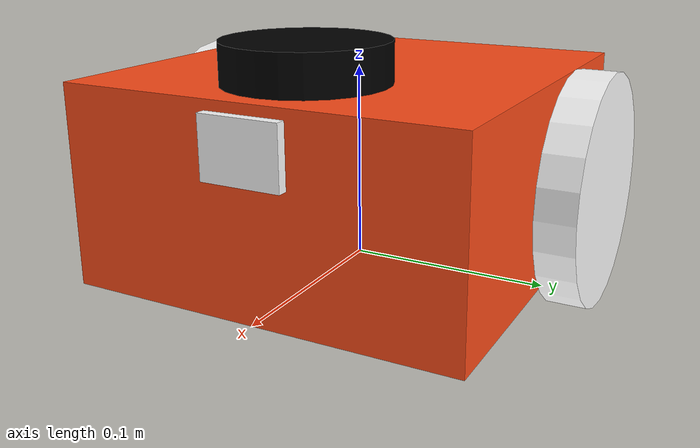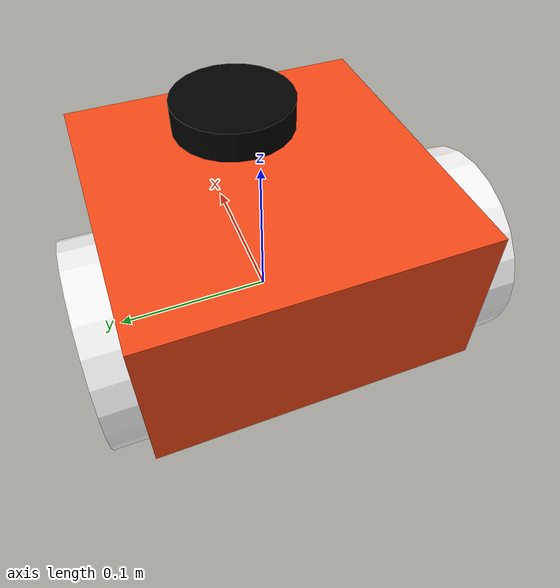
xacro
<?xml version="1.0"?>
<!-- Purpose: MobileBot base description and link/joint definitions. -->
<robot xmlns:xacro="http://www.ros.org/wiki/xacro">

    <xacro:include filename="mobilerobot_inertials.urdf.xacro"/>
    <xacro:include filename="mobilerobot_lidar_camera.urdf.xacro"/>

    <material name="white">
        <color rgba="1 1 1 1"/>
    </material>

    <material name="orange">
        <color rgba="1 0.3 0.1 1"/>
    </material>

    <material name="black">
        <color rgba="0 0 0 1"/>
    </material>

    <!-- BASE LINK -->
    <link name="base_link">
    </link>

    <joint name="base_footprint_joint" type="fixed">
        <parent link="base_link"/>
        <child link="base_footprint"/>
        <origin xyz="0 0 0" rpy="0 0 0"/>
    </joint>

    <link name="base_footprint">
    </link>

    <!-- CHASSIS LINK -->
    <joint name="chassis_joint" type="fixed">
        <parent link="base_link"/>
        <child link="chassis"/>
        <origin xyz="0 0 0"/>
    </joint>

    <gazebo reference="chassis">
        <material>Gazebo/Orange</material>
    </gazebo>

    <link name="chassis">
        <visual>
            <origin xyz="0 0 0.05"/>
            <geometry>
                <box size="0.2 0.2 0.1"/>
            </geometry>
            <material name="orange"/>
        </visual>
        <collision>
            <origin xyz="0 0 0.05"/>
            <geometry>
                <box size="0.2 0.2 0.1"/>
            </geometry>
        </collision>
        <xacro:inertial_box mass="3" x="0.2" y="0.2" z="0.1">
            <origin xyz="0 0 0.05" rpy="0 0 0"/>
        </xacro:inertial_box>
    </link>

    <!-- LEFT WHEEL LINK -->
    <joint name="left_wheel_joint" type="continuous">
        <parent link="chassis"/>
        <child link="left_wheel"/>
        <origin xyz="-0.04 0.11 0.04" rpy="-${pi/2} 0 0"/>
        <axis xyz="0 0 1"/>
    </joint>

    <link name="left_wheel">
        <visual>
            <geometry>
                <cylinder radius="0.06" length="0.02"/>
            </geometry>
            <material name="white"/>
        </visual>
        <collision>
            <geometry>
                <cylinder radius="0.06" length="0.02"/>
            </geometry>
        </collision>
        <xacro:inertial_cylinder mass="0.5" length="0.02" radius="0.06">
            <origin xyz="0 0 0" rpy="0 0 0"/>
        </xacro:inertial_cylinder>
    </link>

    <!-- RIGHT WHEEL LINK -->
    <joint name="right_wheel_joint" type="continuous">
        <parent link="chassis"/>
        <child link="right_wheel"/>
        <origin xyz="-0.04 -0.11 0.04" rpy="${pi/2} 0 0"/>
        <axis xyz="0 0 -1"/>
    </joint>

    <link name="right_wheel">
        <visual>
            <geometry>
                <cylinder radius="0.06" length="0.02"/>
            </geometry>
            <material name="white"/>
        </visual>
        <collision>
            <geometry>
                <cylinder radius="0.06" length="0.02"/>
            </geometry>
        </collision>
        <xacro:inertial_cylinder mass="0.5" length="0.02" radius="0.06">
            <origin xyz="0 0 0" rpy="0 0 0"/>
        </xacro:inertial_cylinder>
    </link>

    <!-- CASTER WHEEL LINK -->
    <joint name="caster_wheel_joint" type="fixed">
        <parent link="chassis"/>
        <child link="caster_wheel"/>
        <origin xyz="0.06 0 0"/>
    </joint>
    <gazebo reference="caster_wheel">
        <material>Gazebo/Black</material>
        <mu1 value="0.01"/>
        <mu2 value="0.01"/>
    </gazebo>

    <link name="caster_wheel">
        <visual>
            <geometry>
                <sphere radius="0.021"/>
            </geometry>
            <material name="black"/>
        </visual>
        <collision>
            <geometry>
                <sphere radius="0.021"/>
            </geometry>
        </collision>
        <xacro:inertial_sphere mass="0.5" radius="0.021">
            <origin xyz="0 0 0" rpy="0 0 0"/>
        </xacro:inertial_sphere>
    </link>
</robot>

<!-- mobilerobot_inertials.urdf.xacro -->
<!-- Purpose: Inertial parameters for MobileBot links. -->
<robot xmlns:xacro="http://www.ros.org/wiki/xacro" >

    <xacro:macro name="inertial_sphere" params="mass radius *origin">
        <inertial>
            <xacro:insert_block name="origin"/>
            <mass value="${mass}" />
            <inertia ixx="${(2/5) * mass * (radius*radius)}" ixy="0.0" ixz="0.0"
                    iyy="${(2/5) * mass * (radius*radius)}" iyz="0.0"
                    izz="${(2/5) * mass * (radius*radius)}" />
        </inertial>
    </xacro:macro>

    <xacro:macro name="inertial_box" params="mass x y z *origin">
        <inertial>
            <xacro:insert_block name="origin"/>
            <mass value="${mass}" />
            <inertia ixx="${(1/12) * mass * (y*y+z*z)}" ixy="0.0" ixz="0.0"
                    iyy="${(1/12) * mass * (x*x+z*z)}" iyz="0.0"
                    izz="${(1/12) * mass * (x*x+y*y)}" />
        </inertial>
    </xacro:macro>

    <xacro:macro name="inertial_cylinder" params="mass length radius *origin">
        <inertial>
            <xacro:insert_block name="origin"/>
            <mass value="${mass}" />
            <inertia ixx="${(1/12) * mass * (3*radius*radius + length*length)}" ixy="0.0" ixz="0.0"
                    iyy="${(1/12) * mass * (3*radius*radius + length*length)}" iyz="0.0"
                    izz="${(1/2) * mass * (radius*radius)}" />
        </inertial>
    </xacro:macro>

</robot>

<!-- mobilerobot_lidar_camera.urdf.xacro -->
<!-- Purpose: Sensor definitions for lidar and camera. -->
<robot xmlns:xacro="http://www.ros.org/wiki/xacro">

    <!-- Lidar Joint and Link -->
    <joint name="lidar_joint" type="fixed">
        <parent link="chassis"/>
        <child link="lidar_link"/>
        <origin xyz="0.05 0 0.11" rpy="0 0 0"/>
    </joint>

    <link name="lidar_link">
        <visual>
            <geometry>
                <cylinder radius="0.04" length="0.02"/>
            </geometry>
            <material name="black"/>
        </visual>
        <collision>
            <geometry>
                <cylinder radius="0.05" length="0.04"/>
            </geometry>
        </collision>
        <xacro:inertial_cylinder mass="0.1" length="0.04" radius="0.05">
            <origin xyz="0 0 0" rpy="0 0 0"/>
        </xacro:inertial_cylinder>
    </link>

    <gazebo reference="lidar_link">
        <material>Gazebo/Black</material>
        <sensor name="lidar" type="ray">
            <pose>0 0 0 0 0 0</pose>
            <always_on>true</always_on>
            <visualize>true</visualize>
            <update_rate>70</update_rate>
            <ray>
            <scan>
                <horizontal>
                    <samples>360</samples>
                    <resolution>1.00000</resolution>
                    <min_angle>-3.14</min_angle>
                    <max_angle>3.14</max_angle>
                </horizontal>
            </scan>
            <range>
                <min>0.3</min>
                <max>10</max>
                <resolution>0.015000</resolution>
            </range>
            <noise>
                <type>gaussian</type>
                <mean>0.0</mean>
                <stddev>0.01</stddev>
            </noise>
            </ray>
            <plugin name="scan" filename="libgazebo_ros_ray_sensor.so">
            <ros>
                <remapping>~/out:=scan</remapping>
            </ros>
            <output_type>sensor_msgs/LaserScan</output_type>
            <frame_name>lidar_link</frame_name>
            </plugin>
        </sensor>
    </gazebo>

    <!-- Camera Joint and Link -->
    <joint name="camera_joint" type="fixed">
        <parent link="chassis"/>
        <child link="camera_link"/>
        <origin xyz="0.1 0 0.08" rpy="0 0 0"/>
    </joint>

    <link name="camera_link">
        <visual>
            <geometry>
                <box size="0.01 0.04 0.03"/>
            </geometry>
            <material name="white"/>
        </visual>
    </link>

    <joint name="camera_optical_joint" type="fixed">
        <parent link="camera_link"/>
        <child link="camera_link_optical"/>
        <origin xyz="0 0 0" rpy="-1.57 0 -1.57"/>
    </joint>

    <link name="camera_link_optical"></link>

    <gazebo reference="camera_link">
        <material>Gazebo/White</material>

        <sensor name="camera" type="camera">
            <pose> 0 0 0 0 0 0 </pose>
            <visualize>true</visualize>
            <update_rate>10</update_rate>
            <camera>
                <horizontal_fov>1.089</horizontal_fov>
                <image>
                    <format>R8G8B8</format>
                    <width>640</width>
                    <height>480</height>
                </image>
                <clip>
                    <near>0.05</near>
                    <far>8.0</far>
                </clip>
            </camera>
            <plugin name="camera_controller" filename="libgazebo_ros_camera.so">
                <frame_name>camera_link_optical</frame_name>
            </plugin>
        </sensor>
    </gazebo>

</robot>
